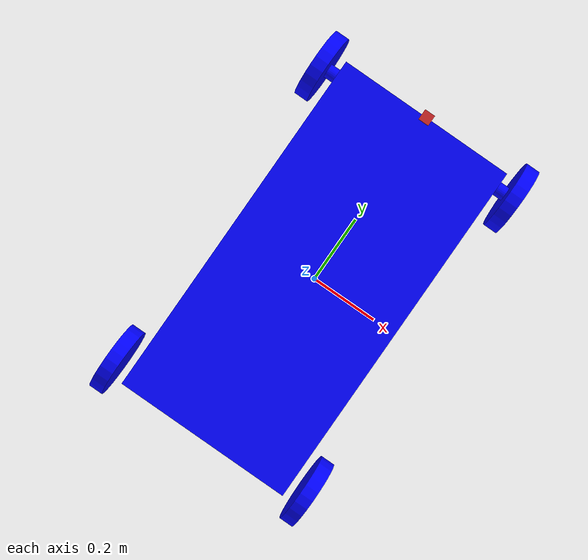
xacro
<?xml version="1.0"?>
<robot xmlns:xacro="http://www.ros.org/wiki/xacro" name="simple_car">

<xacro:include filename="inertial.xacro"/>
<xacro:include filename="camera.xacro" />

    <xacro:property name="wheel_width" value="0.04"/>
    <xacro:property name="wheel_radius" value="0.1"/>

    <!-- Wheel macro -->
    <xacro:macro name="wheel" params="name">
        <link name="${name}">
            <visual>
                <geometry>
                    <cylinder length="${wheel_width}" radius="${wheel_radius}" />
                </geometry>
                <material name="blue"/>
            </visual>
            <collision>
                <geometry>
                    <cylinder length="${wheel_width}" radius="${wheel_radius}" />
                </geometry>
            </collision>
             <xacro:inertial_cylinder mass="0.1" length="${wheel_width}" radius="${wheel_radius}"/>
        </link>

        <gazebo reference="${name}">
            <material>Gazebo/Blue</material>
        </gazebo>

    </xacro:macro>

    <xacro:property name="hinge_width" value="0.04"/>
    <xacro:property name="hinge_radius" value="0.02"/>

    <!-- Hinge macro -->
    <xacro:macro name="hinge" params="name">
        <link name="${name}">
            <visual>
                <geometry>
                    <cylinder length="${hinge_width}" radius="${hinge_radius}" />
                </geometry>
                <material name="blue"/>
            </visual>
            <collision>
                <geometry>
                    <cylinder length="${hinge_width}" radius="${hinge_radius}" />
                </geometry>
            </collision>
             <xacro:inertial_cylinder mass="0.1" length="${hinge_width}" radius="${hinge_radius}"/>
        </link>

        <gazebo reference="${name}">
            <material>Gazebo/Blue</material>
        </gazebo>

    </xacro:macro>

  <!-- Base Link -->

  <link name="base_link">
  </link>

  <!-- Chassis Link -->
  <link name="chassis_link">
    <visual>
      <geometry>
        <box size="0.5 1.0 0.2"/>
      </geometry>
      <origin xyz="0 0 0" rpy="0 0 0"/>
      <material name="blue">
        <color rgba="0 0 1 1"/>
      </material>
    </visual>

    <xacro:inertial_box mass="0.5" x="0.5" y="1.0" z="0.15"/>

  </link>

  <gazebo reference="chassis_link">
        <material>Gazebo/Orange</material>
  </gazebo>

 <!-- Base Chassis Joint -->
  <joint name="base_chassis_joint" type="fixed">
      <parent link="base_link"/>
      <child link="chassis_link"/>
      <origin xyz="0 0 0.2" rpy="0 0 0 "/>
  </joint>

  <!-- Front Left Hinge -->
  <xacro:hinge name="front_left_hinge"/>

  <joint name="front_left_hinge_joint" type="revolute">
        <parent link="chassis_link"/>
        <child link="front_left_hinge"/>
        <origin xyz="-0.27 0.48 -0.08" rpy="0 ${-pi/2} 0"/>
        <limit upper="0.5236" lower="-0.5236" velocity="20" effort="1"/>
        <axis xyz="1 0 0"/>
  </joint>

   <gazebo reference="front_left_hinge">
       <material>Gazebo/Green</material>
   </gazebo>

  <!-- Front Left Wheel -->
  <xacro:wheel name="front_left_link"/>

  <joint name="front_left_joint" type="continuous">
        <parent link="front_left_hinge"/>
        <child link="front_left_link"/>
        <origin xyz="0.0 0.0 0.04" rpy="0 0 0"/>
        <axis xyz="0 0 1"/>
  </joint>

   <gazebo reference="front_left_link">
       <material>Gazebo/Red</material>
   </gazebo>

  <!-- Front Right Hinge -->
  <xacro:hinge name="front_right_hinge"/>

  <joint name="front_right_hinge_joint" type="revolute">
        <parent link="chassis_link"/>
        <child link="front_right_hinge"/>
        <origin xyz="0.27 0.48 -0.08" rpy="0 ${-pi/2} 0"/>
        <limit upper="0.5236" lower="-0.5236" velocity="20" effort="1"/>
        <axis xyz="1 0 0"/>
  </joint>

   <gazebo reference="front_right_hinge">
       <material>Gazebo/Green</material>
   </gazebo>

  <!-- Front Right Wheel -->
  <xacro:wheel name="front_right_link"/>

  <joint name="front_right_joint" type="continuous">
        <parent link="front_right_hinge"/>
        <child link="front_right_link"/>
        <origin xyz="0 0 -0.04" rpy="0 0 0"/>
        <axis xyz="0 0 1"/>
  </joint>

  <gazebo reference="front_right_link">
       <material>Gazebo/Red</material>
  </gazebo>

  <!-- Rear Left Wheel -->
  <xacro:wheel name="rear_left_link"/>

  <joint name="rear_left_joint" type="continuous">
        <parent link="chassis_link"/>
        <child link="rear_left_link"/>
        <origin xyz="-0.31 -0.48 -0.08" rpy="0 ${-pi/2} 0"/>
        <axis xyz="0 0 1"/>
  </joint>

  <!-- Rear Right Wheel -->
  <xacro:wheel name="rear_right_link" />

  <joint name="rear_right_joint" type="continuous">
        <parent link="chassis_link"/>
        <child link="rear_right_link"/>
        <origin xyz="0.31 -0.48 -0.08" rpy="0 ${-pi/2} 0"/> <!-- Default value for x is "0.27" -->
        <axis xyz="0 0 1"/>
  </joint>

  <xacro:include filename="ros2_ack.xacro"/>

</robot>

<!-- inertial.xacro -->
<robot xmlns:xacro="http://www.ros.org/wiki/xacro" >

    <!-- Specify some standard inertial calculations https://en.wikipedia.org/wiki/List_of_moments_of_inertia -->
    <!-- These make use of xacro's mathematical functionality -->

    <xacro:macro name="inertial_box" params="mass x y z">
        <inertial>
            <mass value="${mass}" />
            <inertia ixx="${(1/12) * mass * (y*y+z*z)}" ixy="0.0" ixz="0.0"
                    iyy="${(1/12) * mass * (x*x+z*z)}" iyz="0.0"
                    izz="${(1/12) * mass * (x*x+y*y)}" />
        </inertial>
    </xacro:macro>

    <xacro:macro name="inertial_cylinder" params="mass length radius">
        <inertial>
            <mass value="${mass}" />
            <inertia ixx="${(1/12) * mass * (3*radius*radius + length*length)}" ixy="0.0" ixz="0.0"
                    iyy="${(1/12) * mass * (3*radius*radius + length*length)}" iyz="0.0"
                    izz="${(1/2) * mass * (radius*radius)}" />
        </inertial>
    </xacro:macro>

</robot>

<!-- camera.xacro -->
<robot xmlns:xacro="http://www.ros.org/wiki/xacro" >

    <joint name="camera_joint" type="fixed">
        <parent link="chassis_link"/>
        <child link="camera_link"/>
        <origin xyz="0 0.50 0.1" rpy="0 0 ${pi/2}"/>
    </joint>

    <link name="camera_link">
        <visual>
            <geometry>
                <box size="0.03 0.03 0.010"/>
            </geometry>
            <material name="red"/>
        </visual>
    </link>

    <joint name="camera_optical_joint" type="fixed">
        <parent link="camera_link"/>
        <child link="camera_link_optical"/>
        <origin xyz="0 0 0" rpy="0 0 0"/>
    </joint>

    <link name="camera_link_optical"></link>

    <gazebo reference="camera_link">
        <material>Gazebo/Green</material>

        <sensor name="camera" type="camera">
            <pose> 0 0 0 0 0 0 </pose>
            <visualize>true</visualize>
            <update_rate>10</update_rate>
            <camera>
                <horizontal_fov>2.0</horizontal_fov>
                <image>
                    <format>R8G8B8</format>
                    <width>640</width>
                    <height>480</height>
                </image>
                <clip>
                    <near>0.05</near>
                    <far>8.0</far>
                </clip>
            </camera>
            <plugin name="camera_controller" filename="libgazebo_ros_camera.so">
                <frame_name>camera_link_optical</frame_name>
            </plugin>
        </sensor>
    </gazebo>

</robot>
